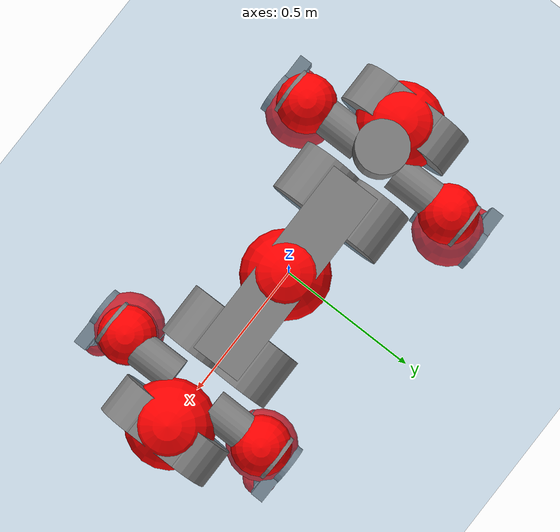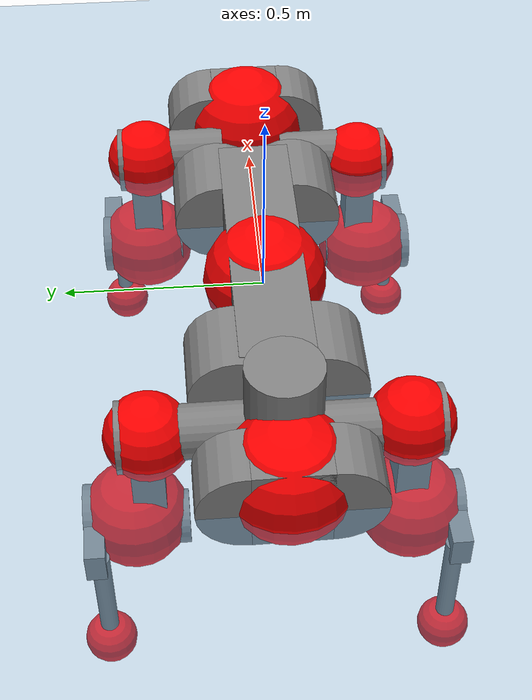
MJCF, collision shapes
<mujoco model="anymal_c">
  <compiler angle="radian" assetdir="assets" balanceinertia="true" inertiafromgeom="false"/>

  <option timestep="0.005" density="1.2" viscosity="2e-05"/>

  <size nkey="1"/>

  <visual>
    <quality shadowsize="8192"/>
    <map shadowclip="0.5"/>
  </visual>

  <default>
    <default class="/">
      <material specular="0" shininess="0.25"/>
      <geom contype="0" conaffinity="0" group="1" solref="-1000 -80"/>
      <site size="0.01 0.005 0.005" group="5"/>
      <general forcelimited="true" forcerange="-80 80" biastype="affine" gainprm="80" biasprm="0 -80 -2"/>
      <default class="anymal_c">
        <joint armature="0.01" damping="0.01" frictionloss="0.1"/>
        <default class="visual">
          <geom type="mesh" group="2"/>
          <default class="visual_zflip"/>
        </default>
        <default class="collision">
          <geom type="cylinder" group="3"/>
          <default class="foot">
            <geom size="0.03 0 0" type="sphere" condim="6" priority="1" friction="0.8 0.02 0.01" solimp="0.015 1 0.03"/>
          </default>
        </default>
      </default>
      <default class="reward_collision_sphere">
        <geom group="5" rgba="1 0 0 1"/>
      </default>
    </default>
  </default>

  <asset>
    <texture type="skybox" colorspace="auto" name="//unnamed_texture_0" builtin="gradient" rgb1="0.95 0.95 0.95" rgb2="0.95 0.95 0.95" width="100" height="600"/>
    <texture type="2d" colorspace="auto" name="texplane" builtin="checker" rgb1="0.345 0.575 0.748" rgb2="0.345 0.575 0.748" markrgb="1 1 1" width="512" height="512"/>
    <texture type="2d" colorspace="linear" name="base" file="base.png"/>
    <texture type="2d" colorspace="linear" name="top_shell" file="top_shell.png"/>
    <texture type="2d" colorspace="linear" name="bottom_shell" file="bottom_shell.png"/>
    <texture type="2d" colorspace="linear" name="remote" file="remote.png"/>
    <texture type="2d" colorspace="linear" name="hatch" file="hatch.png"/>
    <texture type="2d" colorspace="linear" name="handle" file="handle.png"/>
    <texture type="2d" colorspace="linear" name="face" file="face.png"/>
    <texture type="2d" colorspace="linear" name="battery" file="battery.png"/>
    <texture type="2d" colorspace="linear" name="lidar_cage" file="lidar_cage.png"/>
    <texture type="2d" colorspace="linear" name="depth_camera" file="depth_camera.png"/>
    <texture type="2d" colorspace="linear" name="wide_angle_camera" file="wide_angle_camera.png"/>
    <texture type="2d" colorspace="linear" name="lidar" file="lidar.png"/>
    <texture type="2d" colorspace="linear" name="drive" file="drive.png"/>
    <texture type="2d" colorspace="linear" name="hip_l" file="hip_l.png"/>
    <texture type="2d" colorspace="linear" name="shank_l" file="shank_l.png"/>
    <texture type="2d" colorspace="linear" name="foot" file="foot.png"/>
    <texture type="2d" colorspace="linear" name="thigh" file="thigh.png"/>
    <texture type="2d" colorspace="linear" name="shank_r" file="shank_r.png"/>
    <texture type="2d" colorspace="linear" name="hip_r" file="hip_r.png"/>
    <material name="MatPlane" class="/" texture="texplane" texuniform="true" texrepeat="2 2" specular="0.9" shininess="0.5"/>
    <material name="black_plastic" class="/" rgba="0.007 0.007 0.007 1"/>
    <material name="green" class="/" rgba="0.052 0.178 0.033 1"/>
    <material name="red" class="/" rgba="0.178 0.006 0.005 1"/>
    <material name="yellow" class="/" rgba="0.178 0.119 0.006 1"/>
    <material name="lwl" class="/" rgba="0.8 0.8 0.8 1"/>
    <material name="base" class="/" texture="base"/>
    <material name="top_shell" class="/" texture="top_shell"/>
    <material name="bottom_shell" class="/" texture="bottom_shell"/>
    <material name="hip_l" class="/" texture="hip_l"/>
    <material name="thigh" class="/" texture="thigh"/>
    <material name="shank_l" class="/" texture="shank_l"/>
    <material name="foot" class="/" texture="foot"/>
    <material name="hip_r" class="/" texture="hip_r"/>
    <material name="shank" class="/" texture="shank_r"/>
    <material name="hatch" class="/" texture="hatch"/>
    <material name="remote" class="/" texture="remote"/>
    <material name="handle" class="/" texture="handle"/>
    <material name="face" class="/" texture="face"/>
    <material name="depth_camera" class="/" texture="depth_camera"/>
    <material name="wide_angle_camera" class="/" texture="wide_angle_camera"/>
    <material name="battery" class="/" texture="battery"/>
    <material name="lidar_cage" class="/" texture="lidar_cage"/>
    <material name="lidar" class="/" texture="lidar"/>
    <material name="drive" class="/" texture="drive"/>
    <mesh name="base_0" class="/" file="base_0.obj"/>
    <mesh name="base_1" class="/" file="base_1.obj"/>
    <mesh name="base_2" class="/" file="base_2.obj"/>
    <mesh name="base_3" class="/" file="base_3.obj"/>
    <mesh name="base_4" class="/" file="base_4.obj"/>
    <mesh name="base_5" class="/" file="base_5.obj"/>
    <mesh name="top_shell" class="/" file="top_shell.obj"/>
    <mesh name="bottom_shell" class="/" file="bottom_shell.obj"/>
    <mesh name="remote" class="/" file="remote.obj"/>
    <mesh name="handle" class="/" file="handle.obj"/>
    <mesh name="face" class="/" file="face.obj"/>
    <mesh name="wide_angle_camera" class="/" file="wide_angle_camera.obj"/>
    <mesh name="depth_camera" class="/" file="depth_camera.obj"/>
    <mesh name="battery" class="/" file="battery.obj"/>
    <mesh name="lidar_cage" class="/" file="lidar_cage.obj"/>
    <mesh name="lidar" class="/" file="lidar.obj"/>
    <mesh name="drive" class="/" file="drive.obj"/>
    <mesh name="hip_l" class="/" file="hip_l.obj"/>
    <mesh name="thigh" class="/" file="thigh.obj"/>
    <mesh name="shank_l" class="/" file="shank_l.obj"/>
    <mesh name="foot" class="/" file="foot.obj"/>
    <mesh name="hip_r" class="/" file="hip_r.obj"/>
    <mesh name="hatch" class="/" file="hatch.obj"/>
    <mesh name="shank_r" class="/" file="shank_r.obj"/>
  </asset>

  <worldbody>
    <geom name="floor" class="/" size="100 100 0.125" type="plane" group="0" material="MatPlane"/>
    <light name="toplight_shadow" class="/" pos="0 0 5" dir="0.0990148 0.0990148 -0.990148" type="directional" ambient="0.04 0.04 0.04" diffuse="0.55 0.55 0.55" specular="0.12 0.12 0.12"/>
    <light name="toplight_fill" class="/" pos="0 0 5" dir="0.0990148 0.0990148 -0.990148" type="directional" castshadow="false" ambient="0.04 0.04 0.04" diffuse="0.3 0.3 0.3" specular="0.08 0.08 0.08"/>
    <body name="trunk" childclass="anymal_c" pos="0.0123527 -0.00451589 0.0097495" quat="0.999984 -0.0047318 -0.000653267 0.00304394">
      <inertial pos="0.0134638 -0.0102428 0.0525986" quat="0.474082 0.463619 0.505623 0.55195" mass="37.271" diaginertia="2.49942 3.4113 0.242818"/>
      <joint name="//unnamed_joint_0" type="free" armature="0" damping="0" frictionloss="0"/>
      <geom name="//unnamed_geom_1" class="visual" material="green" mesh="base_0"/>
      <geom name="//unnamed_geom_2" class="visual" material="yellow" mesh="base_1"/>
      <geom name="//unnamed_geom_3" class="visual" material="red" mesh="base_2"/>
      <geom name="//unnamed_geom_4" class="visual" material="black_plastic" mesh="base_3"/>
      <geom name="//unnamed_geom_5" class="visual" material="lwl" mesh="base_4"/>
      <geom name="//unnamed_geom_6" class="visual" material="base" mesh="base_5"/>
      <geom name="trunk_1" class="collision" size="0.378843 0.0914448 0.117572" type="box"/>
      <geom name="trunk_2" class="collision" size="0.117572 0.0947107" pos="0.30623 0.0988871 0" quat="0.707107 0 0.707107 0"/>
      <geom name="trunk_3" class="collision" size="0.117572 0.0947107" pos="-0.30623 0.0988871 0" quat="0.707107 0 0.707107 0"/>
      <geom name="trunk_4" class="collision" size="0.117572 0.0947107" pos="0.30623 -0.0988871 0" quat="0.707107 0 0.707107 0"/>
      <geom name="trunk_5" class="collision" size="0.117572 0.0947107" pos="-0.30623 -0.0988871 0" quat="0.707107 0 0.707107 0"/>
      <geom name="//unnamed_geom_12" class="visual" material="top_shell" mesh="top_shell"/>
      <geom name="//unnamed_geom_13" class="visual" material="bottom_shell" mesh="bottom_shell"/>
      <geom name="//unnamed_geom_14" class="visual" material="remote" mesh="remote"/>
      <geom name="//unnamed_geom_15" class="visual" material="handle" mesh="handle"/>
      <geom name="//unnamed_geom_16" class="visual" pos="0.583597 0 0" quat="1 0 0 0" material="face" mesh="face"/>
      <geom name="trunk_6" class="collision" size="0.0718495 0.0914448 0.117572" pos="0.661035 0 0" type="box"/>
      <geom name="//unnamed_geom_18" class="collision" size="0.117572 0.0718495" pos="0.661035 0.0988871 0" quat="0.707107 0 0.707107 0"/>
      <geom name="//unnamed_geom_19" class="collision" size="0.117572 0.0718495" pos="0.661035 -0.0988871 0" quat="0.707107 0 0.707107 0"/>
      <geom name="//unnamed_geom_20" class="visual" pos="0.649969 0 -0.0297221" quat="0.965926 0 0.258819 0" material="depth_camera" mesh="depth_camera"/>
      <geom name="//unnamed_geom_21" class="visual" pos="0.722281 0 0.0164436" material="wide_angle_camera" mesh="wide_angle_camera"/>
      <geom name="//unnamed_geom_22" class="visual_zflip" pos="-0.583597 0 0" quat="0 0 0 1" material="face" mesh="face"/>
      <geom name="trunk_7" class="collision" size="0.0718495 0.0914448 0.117572" pos="-0.661035 0 0" quat="0 0 0 1" type="box"/>
      <geom name="//unnamed_geom_24" class="collision" size="0.117572 0.0718495" pos="-0.661035 -0.0988871 0" quat="0 -0.707107 0 0.707107"/>
      <geom name="//unnamed_geom_25" class="collision" size="0.117572 0.0718495" pos="-0.661035 0.0988871 0" quat="0 -0.707107 0 0.707107"/>
      <geom name="//unnamed_geom_26" class="visual" pos="-0.649969 0 -0.0297221" quat="0 -0.258819 0 0.965926" material="depth_camera" mesh="depth_camera"/>
      <geom name="//unnamed_geom_27" class="visual_zflip" pos="-0.722281 0 0.0164436" quat="0 0 0 1" material="wide_angle_camera" mesh="wide_angle_camera"/>
      <geom name="//unnamed_geom_28" class="visual" material="battery" mesh="battery"/>
      <geom name="//unnamed_geom_29" class="visual" pos="0 0.108062 0.0342619" quat="0.683013 -0.183013 0.183013 0.683013" material="depth_camera" mesh="depth_camera"/>
      <geom name="//unnamed_geom_30" class="visual" pos="0 -0.108062 0.0342619" quat="0.683013 0.183013 0.183013 -0.683013" material="depth_camera" mesh="depth_camera"/>
      <geom name="//unnamed_geom_31" class="visual" pos="-0.512495 0 0.0807352" quat="1 0 0 0" material="lidar_cage" mesh="lidar_cage"/>
      <geom name="trunk_8" class="collision" size="0.0914448 0.0783813" pos="-0.512495 0 0.146641"/>
      <geom name="//unnamed_geom_33" class="visual" pos="-0.512495 1.85353e-06 0.156198" quat="0.707107 0 0 -0.707107" material="lidar" mesh="lidar"/>
      <geom name="//unnamed_geom_34" class="visual" pos="0.422246 0.146806 5.42059e-09" quat="0.258819 0.965926 0 0" material="drive" mesh="drive"/>
      <geom name="//unnamed_geom_35" class="visual" pos="0.422246 -0.146806 -5.42059e-09" quat="0.258819 -0.965926 0 0" material="drive" mesh="drive"/>
      <geom name="//unnamed_geom_36" class="visual" pos="-0.422246 0.146806 -5.42059e-09" quat="0 0 0.965926 -0.258819" material="drive" mesh="drive"/>
      <geom name="//unnamed_geom_37" class="visual" pos="-0.422246 -0.146806 5.42059e-09" quat="0 0 -0.965926 -0.258819" material="drive" mesh="drive"/>
      <geom name="//unnamed_geom_38" class="visual" pos="0.163323 0 0.0801859" quat="1 0 0 0" material="hatch" mesh="hatch"/>
      <geom name="//unnamed_geom_39" class="reward_collision_sphere" size="0.156763"/>
      <geom name="//unnamed_geom_40" class="reward_collision_sphere" size="0.156763" pos="0.63358 0 0"/>
      <geom name="//unnamed_geom_41" class="reward_collision_sphere" size="0.156763" pos="-0.63358 0 0"/>
      <site name="imu" pos="0.298506 0.0998778 0.0901487" size="0.0130635"/>
      <camera name="track" pos="0 -2.82535 0" quat="0.707107 0.707107 0 0" mode="trackcom"/>
      <camera name="ego_camera" pos="0.63358 0 -0.0439375" quat="-0.5 -0.5 0.5 0.5"/>
      <body name="LF_HIP" pos="0.420186 0.148719 0.00752917" quat="0.264205 0.964444 -0.00651501 -0.000534938">
        <inertial pos="0.0896963 -0.0243981 -0.00257949" quat="-0.140425 0.666504 -0.123581 0.721652" mass="4.98809" diaginertia="0.0259141 0.0220327 0.00369928"/>
        <joint name="LF_HAA" pos="0 0 0" axis="0.998673 0.0378294 -0.0349322" stiffness="0.00688943" range="-1.03016 0.484239" armature="0.00406176" damping="0" frictionloss="0.161194"/>
        <geom name="//unnamed_geom_42" class="visual" pos="0 0.000318869 -5.23739e-05" quat="0.258819 -0.965926 0 0" material="hip_l" mesh="hip_l"/>
        <geom name="//unnamed_geom_43" class="visual" pos="0.0843365 -0.102142 -0.0566475" quat="0.183013 -0.683013 0.683013 0.183013" material="drive" mesh="drive"/>
        <geom name="//unnamed_geom_44" class="collision" size="0.0653177 0.0914448" pos="0.0843365 -0.0168953 -0.00758471" quat="-0.353553 -0.612372 0.612372 -0.353553"/>
        <body name="LF_THIGH" pos="0.0838032 -0.0968939 -0.040136" quat="0.18315 -0.683168 0.682824 0.183001">
          <inertial pos="0.0459055 0.0157076 -0.252213" quat="0.992469 0.00880579 -0.104286 0.0636587" mass="7.03685" diaginertia="0.151633 0.183387 0.0060352"/>
          <joint name="LF_HFE" pos="0 0 0" axis="0.999671 0.0136283 0.0217072" range="-3.14813 2.80005" armature="0.0200563" damping="0.097457" frictionloss="0.133078"/>
          <geom name="//unnamed_geom_45" class="visual" pos="-9.38672e-05 -1.47913e-07 0" quat="0.707107 0 0 -0.707107" material="thigh" mesh="thigh"/>
          <geom name="//unnamed_geom_46" class="collision" size="0.0849131 0.0522542" pos="0.0563182 0 0" quat="0.5 0.5 -0.5 -0.5"/>
          <geom name="//unnamed_geom_47" class="collision" size="0.0489883 0.0391906 0.184606" pos="0.0422386 0 -0.155225" quat="0.707107 0 0 -0.707107" type="box"/>
          <geom name="//unnamed_geom_48" class="visual" pos="0.141218 0 -0.313055" quat="1 0 0 0" material="drive" mesh="drive"/>
          <geom name="//unnamed_geom_49" class="collision" size="0.0653177 0.0914448" pos="0.042661 0 -0.313055" quat="0.707107 0 0.707107 0"/>
          <geom name="//unnamed_geom_50" class="reward_collision_sphere" size="0.104508" pos="0.0351989 0 0"/>
          <body name="LF_SHANK" pos="0.123445 -0.0164387 -0.325095" quat="1 8.57376e-07 -1.72971e-06 -5.46983e-06">
            <inertial pos="0.014643 -0.0761733 -0.100488" quat="0.992952 -0.115578 -0.000770761 -0.0262023" mass="1.03429" diaginertia="0.0467654 0.0546655 0.00174953"/>
            <joint name="LF_KFE" pos="0 0 0" axis="0.999951 -0.00984473 0.00114126" stiffness="0.0849844" range="-3.37532 3.43501" armature="0.0142809" damping="0.0267316" frictionloss="0.157951"/>
            <geom name="//unnamed_geom_51" class="visual" pos="-3.0608e-05 -0.000163204 0" quat="0.707107 0 0 -0.707107" material="shank_l" mesh="shank_l"/>
            <geom name="LF_kfe_act" class="collision" size="0.0783813 0.0261271" pos="0.0281591 0 0" quat="0.5 0.5 -0.5 -0.5"/>
            <geom name="//unnamed_geom_53" class="collision" size="0.0751141 0.0440895 0.0248207" pos="0.0281591 -0.0812273 0" quat="0.5 0.5 -0.5 -0.5" type="box"/>
            <geom name="//unnamed_geom_54" class="visual" pos="0.0183738 -0.124297 -0.371239" quat="0.382683 0 0 -0.92388" material="foot" mesh="foot"/>
            <geom name="LF_calf" class="collision" size="0.0228612 0.184525" pos="0.0183738 -0.124245 -0.185619" quat="0.707107 0 0 -0.707107"/>
            <geom name="LF_foot" class="foot" size="0.0630165" pos="0.0183738 -0.124245 -0.346524" quat="0.707107 0 0 -0.707107"/>
            <geom name="//unnamed_geom_57" class="reward_collision_sphere" size="0.130635" pos="-0.0703977 0 0"/>
            <geom name="//unnamed_geom_58" class="reward_collision_sphere" size="0.0653177" pos="0.0183738 -0.124245 -0.346524"/>
            <site name="LF_foot" class="foot" pos="0.0183738 -0.124245 -0.346524" quat="0.707107 0 0 -0.707107" size="0.0130635"/>
          </body>
        </body>
      </body>
      <body name="RF_HIP" pos="0.412788 -0.156792 -0.016043" quat="0.258574 -0.965991 0.000937567 -0.000143843">
        <inertial pos="0.0864412 0.0335131 -0.0110852" quat="0.0579504 0.675909 0.133522 0.722469" mass="4.96226" diaginertia="0.0290766 0.0197115 0.0039235"/>
        <joint name="RF_HAA" pos="0 0 0" axis="1 -5.81032e-05 0.00028139" range="-0.743164 0.658421" armature="0.0137508" damping="0.0091903" frictionloss="0.0813253"/>
        <geom name="//unnamed_geom_59" class="visual" pos="0 -0.000318866 -5.23738e-05" quat="0.258819 0.965926 0 0" material="hip_r" mesh="hip_r"/>
        <geom name="//unnamed_geom_60" class="visual" pos="0.0843365 0.102142 -0.0566475" quat="0.183013 0.683013 0.683013 -0.183013" material="drive" mesh="drive"/>
        <geom name="//unnamed_geom_61" class="collision" size="0.0653177 0.0914448" pos="0.0843365 0.0168953 -0.00758471" quat="-0.353553 0.612372 0.612372 0.353553"/>
        <body name="RF_THIGH" pos="0.0750215 0.104581 -0.0325844" quat="0.185283 0.681713 0.683034 -0.185479">
          <inertial pos="0.0435909 0.000614031 -0.253539" quat="0.999425 0.00303453 -0.0130145 0.0311507" mass="4.98383" diaginertia="0.150511 0.133971 0.00533157"/>
          <joint name="RF_HFE" pos="0 0 0" axis="0.999922 -0.0112563 -0.00543031" stiffness="0.0104597" range="-2.81934 2.87064" armature="0.0212086" damping="0.0214077" frictionloss="0.0924093"/>
          <geom name="//unnamed_geom_62" class="visual" pos="-9.38672e-05 -1.47913e-07 0" quat="0.707107 0 0 -0.707107" material="thigh" mesh="thigh"/>
          <geom name="//unnamed_geom_63" class="collision" size="0.0849131 0.0522542" pos="0.0563182 0 0" quat="0.5 0.5 0.5 0.5"/>
          <geom name="//unnamed_geom_64" class="collision" size="0.0489883 0.0391906 0.184606" pos="0.0422386 0 -0.155225" quat="0.707107 0 0 0.707107" type="box"/>
          <geom name="//unnamed_geom_65" class="visual" pos="0.141218 0 -0.313055" quat="1 0 0 0" material="drive" mesh="drive"/>
          <geom name="//unnamed_geom_66" class="collision" size="0.0653177 0.0914448" pos="0.042661 0 -0.313055" quat="0.707107 0 0.707107 0"/>
          <geom name="//unnamed_geom_67" class="reward_collision_sphere" size="0.104508" pos="0.0351989 0 0"/>
          <body name="RF_SHANK" pos="0.137175 -0.00335372 -0.31446" quat="1 -0.000121168 0.000297542 -0.000159463">
            <inertial pos="0.00237553 0.0845981 -0.106565" quat="0.985725 0.162621 0.00596264 0.0431928" mass="1.87129" diaginertia="0.061499 0.0497903 0.00261188"/>
            <joint name="RF_KFE" pos="0 0 0" axis="0.999381 -0.00250162 -0.035089" stiffness="0.0045197" range="-3.17233 3.34096" armature="0.0049322" damping="0.0160256" frictionloss="0.126492"/>
            <geom name="//unnamed_geom_68" class="visual" pos="-3.06079e-05 0.000163203 0" quat="0.707107 0 0 0.707107" material="shank" mesh="shank_r"/>
            <geom name="RF_kfe_act" class="collision" size="0.0783813 0.0261271" pos="0.0281591 0 0" quat="0.5 0.5 0.5 0.5"/>
            <geom name="//unnamed_geom_70" class="collision" size="0.0751141 0.0440895 0.0248207" pos="0.0281591 0.0812273 0" quat="0.5 0.5 0.5 0.5" type="box"/>
            <geom name="//unnamed_geom_71" class="visual" pos="0.0183738 0.124297 -0.371239" quat="0.382683 0 0 0.92388" material="foot" mesh="foot"/>
            <geom name="RF_calf" class="collision" size="0.0228612 0.184525" pos="0.0183738 0.124245 -0.185619" quat="0.707107 0 0 0.707107"/>
            <geom name="RF_foot" class="foot" size="0.028087" pos="0.0183738 0.124245 -0.346524" quat="0.707107 0 0 0.707107"/>
            <geom name="//unnamed_geom_74" class="reward_collision_sphere" size="0.130635" pos="-0.0703977 0 0"/>
            <geom name="//unnamed_geom_75" class="reward_collision_sphere" size="0.0653177" pos="0.0183738 0.124245 -0.346524"/>
            <site name="RF_foot" class="foot" pos="0.0183738 0.124245 -0.346524" quat="0.707107 0 0 0.707107" size="0.0130635"/>
          </body>
        </body>
      </body>
      <body name="LH_HIP" pos="-0.417023 0.156332 0.0156402" quat="2.69391e-05 -0.000159433 0.965867 -0.259037">
        <inertial pos="0.0787019 0.0248733 0.00628566" quat="0.115828 0.67458 0.133413 0.716747" mass="5.26048" diaginertia="0.0278743 0.0333958 0.00530409"/>
        <joint name="LH_HAA" pos="0 0 0" axis="0.999983 0.00361351 0.0045204" range="-0.83477 0.414222" armature="0.0120632" damping="0.0622945" frictionloss="0.0309266"/>
        <geom name="//unnamed_geom_76" class="visual" pos="0 -0.000318866 -5.23738e-05" quat="-0.258819 -0.965926 0 0" material="hip_r" mesh="hip_r"/>
        <geom name="//unnamed_geom_77" class="visual" pos="0.0843365 0.102142 -0.0566475" quat="0.183013 0.683013 0.683013 -0.183013" material="drive" mesh="drive"/>
        <geom name="//unnamed_geom_78" class="collision" size="0.0653177 0.0914448" pos="0.0843365 0.0168953 -0.00758471" quat="-0.353553 0.612372 0.612372 0.353553"/>
        <body name="LH_THIGH" pos="0.081347 0.108811 -0.0503715" quat="0.182653 0.682988 0.683201 -0.182761">
          <inertial pos="0.0583349 -0.00484828 -0.252325" quat="0.98671 0.061886 -0.0868173 0.122625" mass="6.50347" diaginertia="0.179277 0.146227 0.00712387"/>
          <joint name="LH_HFE" pos="0 0 0" axis="0.997226 -0.074104 -0.00697192" stiffness="0.0369244" range="-2.83602 3.24751" armature="0.00767057" damping="0" frictionloss="0.140703"/>
          <geom name="//unnamed_geom_79" class="visual" pos="-9.38672e-05 -1.47913e-07 0" quat="0.707107 0 0 -0.707107" material="thigh" mesh="thigh"/>
          <geom name="//unnamed_geom_80" class="collision" size="0.0849131 0.0522542" pos="0.0563182 0 0" quat="0.5 0.5 -0.5 -0.5"/>
          <geom name="//unnamed_geom_81" class="collision" size="0.0489883 0.0391906 0.184606" pos="0.0422386 0 -0.155225" quat="0.707107 0 0 -0.707107" type="box"/>
          <geom name="//unnamed_geom_82" class="visual" pos="0.141218 0 -0.313055" quat="1 0 0 0" material="drive" mesh="drive"/>
          <geom name="//unnamed_geom_83" class="collision" size="0.0653177 0.0914448" pos="0.042661 0 -0.313055" quat="0.707107 0 0.707107 0"/>
          <geom name="//unnamed_geom_84" class="reward_collision_sphere" size="0.104508" pos="0.0351989 0 0"/>
          <body name="LH_SHANK" pos="0.152181 -0.00877768 -0.300212" quat="0.999999 -0.000528299 0.000559905 -0.00105906">
            <inertial pos="-0.00280564 0.097463 -0.100312" quat="0.992778 0.103525 0.0606124 -0.000253561" mass="1.50957" diaginertia="0.0559895 0.0461457 0.00194547"/>
            <joint name="LH_KFE" pos="0 0 0" axis="0.998765 -0.0454216 -0.0201506" stiffness="0.0884528" range="-3.29126 3.14431" armature="0.00942794" damping="0" frictionloss="0.0606893"/>
            <geom name="//unnamed_geom_85" class="visual" pos="-3.06079e-05 0.000163203 0" quat="-0.707107 0 0 -0.707107" material="shank" mesh="shank_r"/>
            <geom name="LH_kfe_act" class="collision" size="0.0783813 0.0261271" pos="0.0281591 0 0" quat="0.5 0.5 -0.5 -0.5"/>
            <geom name="//unnamed_geom_87" class="collision" size="0.0751141 0.0440895 0.0248207" pos="0.0281591 0.0812273 0" quat="0.5 0.5 -0.5 -0.5" type="box"/>
            <geom name="//unnamed_geom_88" class="visual" pos="0.0183738 0.124297 -0.371239" quat="-0.382683 0 0 -0.92388" material="foot" mesh="foot"/>
            <geom name="LH_calf" class="collision" size="0.0228612 0.184525" pos="0.0183738 0.124245 -0.185619" quat="0.707107 0 0 -0.707107"/>
            <geom name="LH_foot" class="foot" size="0.0272442" pos="0.0183738 0.124245 -0.346524" quat="0.707107 0 0 -0.707107"/>
            <geom name="//unnamed_geom_91" class="reward_collision_sphere" size="0.130635" pos="-0.0703977 0 0"/>
            <geom name="//unnamed_geom_92" class="reward_collision_sphere" size="0.0653177" pos="0.0183738 0.124245 -0.346524"/>
            <site name="LH_foot" class="foot" pos="0.0183738 0.124245 -0.346524" quat="0.707107 0 0 -0.707107" size="0.0130635"/>
          </body>
        </body>
      </body>
      <body name="RH_HIP" pos="-0.423665 -0.139901 -0.000585" quat="0.00368091 -0.0015287 -0.965748 -0.259451">
        <inertial pos="0.0779595 -0.0366685 0.00320931" quat="-0.12779 0.709404 -0.132146 0.680407" mass="6.67792" diaginertia="0.0417277 0.0357964 0.00641149"/>
        <joint name="RH_HAA" pos="0 0 0" axis="0.999331 0.0324096 -0.0169335" stiffness="0.0101292" range="-0.880931 0.763998" armature="0.0192902" damping="0.0774361" frictionloss="0.079368"/>
        <geom name="//unnamed_geom_93" class="visual" pos="0 0.000318869 -5.23739e-05" quat="-0.258819 0.965926 0 0" material="hip_l" mesh="hip_l"/>
        <geom name="//unnamed_geom_94" class="visual" pos="0.0843365 -0.102142 -0.0566475" quat="-0.183013 0.683013 -0.683013 -0.183013" material="drive" mesh="drive"/>
        <geom name="//unnamed_geom_95" class="collision" size="0.0653177 0.0914448" pos="0.0843365 -0.0168953 -0.00758471" quat="0.353553 0.612372 -0.612372 0.353553"/>
        <body name="RH_THIGH" pos="0.0789765 -0.104684 -0.0620136" quat="-0.182979 0.683061 -0.682981 -0.182982">
          <inertial pos="0.0545407 -0.0123454 -0.270532" quat="0.993132 -0.00480184 -0.0810397 0.0842552" mass="9.42516" diaginertia="0.174049 0.206432 0.00650813"/>
          <joint name="RH_HFE" pos="0 0 0" axis="0.999209 -0.0292338 0.0269742" range="-2.82012 2.83679" armature="0.0111128" damping="0.00315346" frictionloss="0.222078"/>
          <geom name="//unnamed_geom_96" class="visual" pos="-9.38672e-05 -1.47913e-07 0" quat="0.707107 0 0 -0.707107" material="thigh" mesh="thigh"/>
          <geom name="//unnamed_geom_97" class="collision" size="0.0849131 0.0522542" pos="0.0563182 0 0" quat="0.5 0.5 0.5 0.5"/>
          <geom name="//unnamed_geom_98" class="collision" size="0.0489883 0.0391906 0.184606" pos="0.0422386 0 -0.155225" quat="0.707107 0 0 0.707107" type="box"/>
          <geom name="//unnamed_geom_99" class="visual" pos="0.141218 0 -0.313055" quat="1 0 0 0" material="drive" mesh="drive"/>
          <geom name="//unnamed_geom_100" class="collision" size="0.0653177 0.0914448" pos="0.042661 0 -0.313055" quat="0.707107 0 0.707107 0"/>
          <geom name="//unnamed_geom_101" class="reward_collision_sphere" size="0.104508" pos="0.0351989 0 0"/>
          <body name="RH_SHANK" pos="0.124936 -0.000743686 -0.31425" quat="0.999997 0.00116381 -7.80279e-05 0.00215562">
            <inertial pos="1.17628e-05 -0.0860349 -0.0884243" quat="0.992355 -0.120886 -0.0207352 -0.0137479" mass="1.74731" diaginertia="0.0691004 0.0621776 0.00197745"/>
            <joint name="RH_KFE" pos="0 0 0" axis="0.998683 0.0172152 -0.0483365" stiffness="0.0516132" range="-3.09057 2.92718" armature="0.0186539" damping="0.0850295" frictionloss="0.140678"/>
            <geom name="//unnamed_geom_102" class="visual" pos="-3.0608e-05 -0.000163204 0" quat="0.707107 0 0 -0.707107" material="shank_l" mesh="shank_l"/>
            <geom name="RH_kfe_act" class="collision" size="0.0783813 0.0261271" pos="0.0281591 0 0" quat="0.5 0.5 0.5 0.5"/>
            <geom name="//unnamed_geom_104" class="collision" size="0.0751141 0.0440895 0.0248207" pos="0.0281591 -0.0812273 0" quat="0.5 0.5 0.5 0.5" type="box"/>
            <geom name="//unnamed_geom_105" class="visual" pos="0.0183738 -0.124297 -0.371239" quat="0.382683 0 0 -0.92388" material="foot" mesh="foot"/>
            <geom name="RH_calf" class="collision" size="0.0228612 0.184525" pos="0.0183738 -0.124245 -0.185619" quat="0.707107 0 0 0.707107"/>
            <geom name="RH_foot" class="foot" size="0.0473996" pos="0.0183738 -0.124245 -0.346524" quat="0.707107 0 0 0.707107"/>
            <geom name="//unnamed_geom_108" class="reward_collision_sphere" size="0.130635" pos="-0.0703977 0 0"/>
            <geom name="//unnamed_geom_109" class="reward_collision_sphere" size="0.0653177" pos="0.0183738 -0.124245 -0.346524"/>
            <site name="RH_foot" class="foot" pos="0.0183738 -0.124245 -0.346524" quat="0.707107 0 0 0.707107" size="0.0130635"/>
          </body>
        </body>
      </body>
    </body>
  </worldbody>

  <contact>
    <pair class="/" geom1="floor" geom2="LF_foot" name="//unnamed_contact_0"/>
    <pair class="/" geom1="floor" geom2="RF_foot" name="//unnamed_contact_1"/>
    <pair class="/" geom1="floor" geom2="LH_foot" name="//unnamed_contact_2"/>
    <pair class="/" geom1="floor" geom2="RH_foot" name="//unnamed_contact_3"/>
  </contact>

  <actuator>
    <general name="LF_HAA" class="/" joint="LF_HAA" forcerange="-84.7138 84.7138" gainprm="124.078" biasprm="0 -124.078 -1.63931"/>
    <general name="LF_HFE" class="/" joint="LF_HFE" forcerange="-48.5028 48.5028" gainprm="124.078" biasprm="0 -124.078 -1.63931"/>
    <general name="LF_KFE" class="/" joint="LF_KFE" forcerange="-164.93 164.93" gainprm="124.078" biasprm="0 -124.078 -1.63931"/>
    <general name="RF_HAA" class="/" joint="RF_HAA" forcerange="-91.1727 91.1727" gainprm="124.078" biasprm="0 -124.078 -1.63931"/>
    <general name="RF_HFE" class="/" joint="RF_HFE" forcerange="-61.5235 61.5235" gainprm="124.078" biasprm="0 -124.078 -1.63931"/>
    <general name="RF_KFE" class="/" joint="RF_KFE" forcerange="-33.9605 33.9605" gainprm="124.078" biasprm="0 -124.078 -1.63931"/>
    <general name="LH_HAA" class="/" joint="LH_HAA" forcerange="-43.4316 43.4316" gainprm="124.078" biasprm="0 -124.078 -1.63931"/>
    <general name="LH_HFE" class="/" joint="LH_HFE" forcerange="-67.6049 67.6049" gainprm="124.078" biasprm="0 -124.078 -1.63931"/>
    <general name="LH_KFE" class="/" joint="LH_KFE" forcerange="-99.4114 99.4114" gainprm="124.078" biasprm="0 -124.078 -1.63931"/>
    <general name="RH_HAA" class="/" joint="RH_HAA" forcerange="-112.769 112.769" gainprm="124.078" biasprm="0 -124.078 -1.63931"/>
    <general name="RH_HFE" class="/" joint="RH_HFE" forcerange="-172.086 172.086" gainprm="124.078" biasprm="0 -124.078 -1.63931"/>
    <general name="RH_KFE" class="/" joint="RH_KFE" forcerange="-157.892 157.892" gainprm="124.078" biasprm="0 -124.078 -1.63931"/>
  </actuator>

  <sensor>
    <gyro site="imu" name="imu_angular_velocity"/>
    <velocimeter site="imu" name="imu_linear_velocity"/>
    <framelinvel objtype="site" objname="LF_foot" name="LF_foot_global_linear_velocity"/>
    <framelinvel objtype="site" objname="RF_foot" name="RF_foot_global_linear_velocity"/>
    <framelinvel objtype="site" objname="LH_foot" name="LH_foot_global_linear_velocity"/>
    <framelinvel objtype="site" objname="RH_foot" name="RH_foot_global_linear_velocity"/>
  </sensor>

  <keyframe>
    <key name="home" qpos="0 0 0.55 1 0 0 0 0 0.4 -0.8 0 -0.4 0.8 0 -0.4 0.8 0 0.4 -0.8"/>
  </keyframe>
</mujoco>
